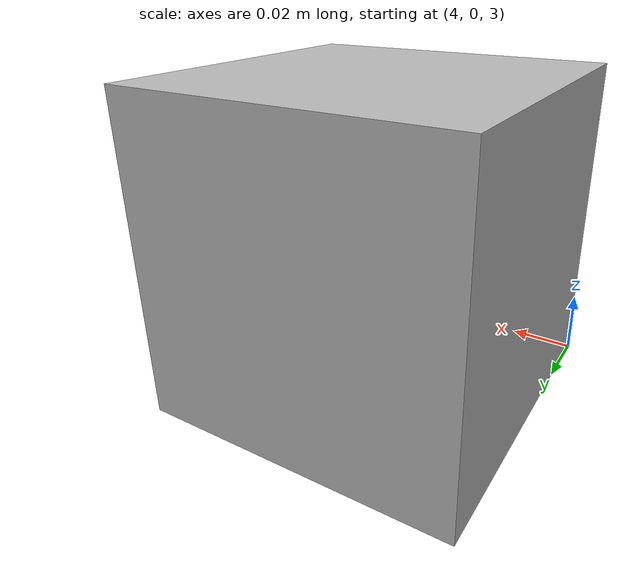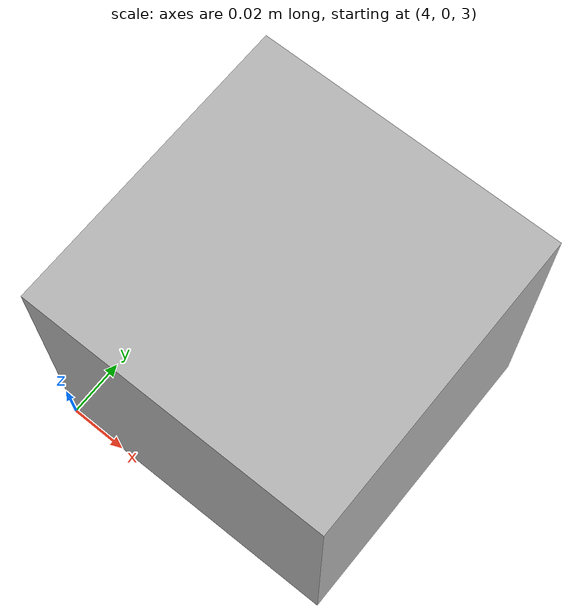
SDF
<?xml version="1.0" ?>
<sdf version="1.6">
  <world name="air_flow_sensor">

   <physics name="1ms" type="ode">
      <max_step_size>0.001</max_step_size>
      <!-- Zero to run as fast as possible -->
      <real_time_factor>0</real_time_factor>
    </physics>

    <gravity>0 0 0</gravity>

    <plugin
      filename="gz-sim-air-flow-system"
      name="gz::sim::systems::AirFlow">
    </plugin>
    <plugin
      filename="gz-sim-scene-broadcaster-system"
      name="gz::sim::systems::SceneBroadcaster">
    </plugin>

    <plugin
      filename="ignition-gazebo-physics-system"
      name="gz::sim::systems::Physics">
    </plugin>

    <wind>
      <linear_velocity>0 -5.0 0</linear_velocity>
    </wind>

    <model name="air_flow_model">
      <pose>4 0 3.0 0 0.0 0</pose>
      <link name="link">
        <pose>0.05 0.05 0.05 0 0 0</pose>
        <inertial>
          <mass>0.1</mass>
          <inertia>
            <ixx>0.000166667</ixx>
            <iyy>0.000166667</iyy>
            <izz>0.000166667</izz>
          </inertia>
        </inertial>
        <collision name="collision">
          <geometry>
            <box>
              <size>0.1 0.1 0.1</size>
            </box>
          </geometry>
        </collision>
        <visual name="visual">
          <geometry>
            <box>
              <size>0.1 0.1 0.1</size>
            </box>
          </geometry>
        </visual>
        <sensor name="air_flow_sensor" type="air_flow">
          <always_on>1</always_on>
          <update_rate>10</update_rate>
          <visualize>true</visualize>
          <air_flow>
            <speed>
              <noise type="gaussian">
                <mean>0</mean>
                <stddev>0</stddev>
              </noise>
            </speed>
            <direction>
              <noise type="gaussian">
                <mean>0</mean>
                <stddev>0</stddev>
              </noise>
            </direction>
          </air_flow>
        </sensor>
      </link>
    </model>

  </world>
</sdf>
